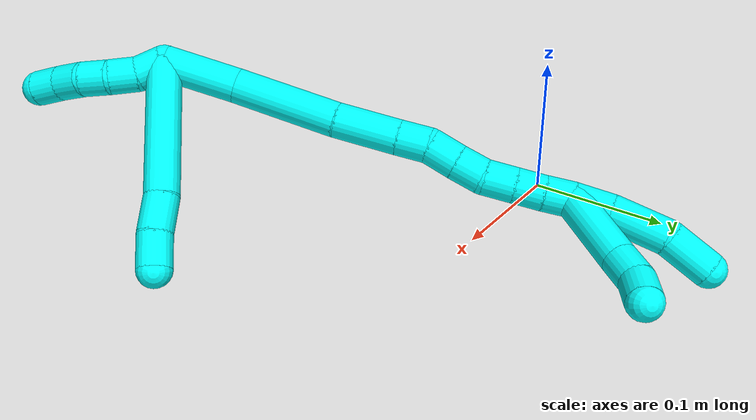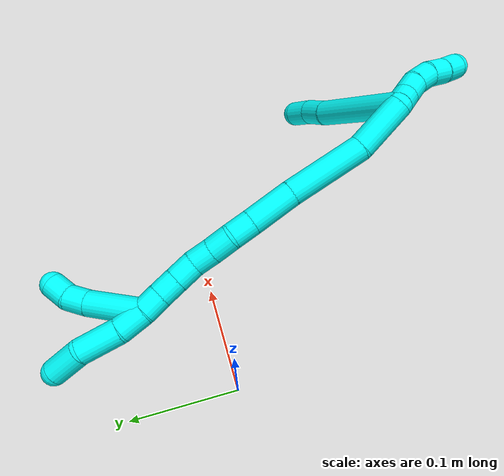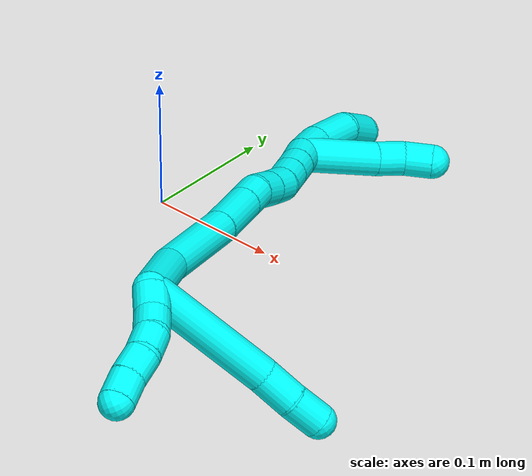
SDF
<sdf version="1.7">
 <world name="default">
  <model name="3">
   <static>0</static>
   <link name="3">
    <collision name="collision-cylinder-e_1_2_8">
     <pose>0.035689 0.027858 0.01966 -0.956244 0.808221 -0.436186</pose>
     <geometry><cylinder><radius>0.0125</radius><length>0.098718</length></cylinder></geometry>
     <surface>
      <friction><ode><mu>1.16</mu><mu2>1.16</mu2><slip1>0</slip1><slip2>0</slip2></ode></friction>
      <contact><ode><kp>1e+06</kp><kd>1</kd><max_vel>0</max_vel><min_depth>0.001</min_depth></ode></contact>
     </surface>
    </collision>
    <visual name="visual-cylinder-e_1_2_8">
     <pose>0.035689 0.027858 0.01966 -0.956244 0.808221 -0.436186</pose>
     <geometry><cylinder><radius>0.0125</radius><length>0.098718</length></cylinder></geometry>
     <material><ambient>0.003922 1 0.996078 1</ambient></material>
    </visual>
    <collision name="collision-cylinder-e_2_8_9">
     <pose>0.082162 0.061589 0.044647 -0.834161 0.936753 -0.441035</pose>
     <geometry><cylinder><radius>0.0125</radius><length>0.02677</length></cylinder></geometry>
     <surface>
      <friction><ode><mu>1.16</mu><mu2>1.16</mu2><slip1>0</slip1><slip2>0</slip2></ode></friction>
      <contact><ode><kp>1e+06</kp><kd>1</kd><max_vel>0</max_vel><min_depth>0.001</min_depth></ode></contact>
     </surface>
    </collision>
    <visual name="visual-cylinder-e_2_8_9">
     <pose>0.082162 0.061589 0.044647 -0.834161 0.936753 -0.441035</pose>
     <geometry><cylinder><radius>0.0125</radius><length>0.02677</length></cylinder></geometry>
     <material><ambient>0.003922 1 0.996078 1</ambient></material>
    </visual>
    <collision name="collision-cylinder-e_3_9_6">
     <pose>0.101767 0.074456 0.054821 -0.964687 0.803456 -0.43775</pose>
     <geometry><cylinder><radius>0.0125</radius><length>0.024512</length></cylinder></geometry>
     <surface>
      <friction><ode><mu>1.16</mu><mu2>1.16</mu2><slip1>0</slip1><slip2>0</slip2></ode></friction>
      <contact><ode><kp>1e+06</kp><kd>1</kd><max_vel>0</max_vel><min_depth>0.001</min_depth></ode></contact>
     </surface>
    </collision>
    <visual name="visual-cylinder-e_3_9_6">
     <pose>0.101767 0.074456 0.054821 -0.964687 0.803456 -0.43775</pose>
     <geometry><cylinder><radius>0.0125</radius><length>0.024512</length></cylinder></geometry>
     <material><ambient>0.003922 1 0.996078 1</ambient></material>
    </visual>
    <collision name="collision-cylinder-e_1_2_10">
     <pose>0.008811 -0.004527 -0.001364 1.86346 1.07829 1.35569</pose>
     <geometry><cylinder><radius>0.0125</radius><length>0.02</length></cylinder></geometry>
     <surface>
      <friction><ode><mu>1.16</mu><mu2>1.16</mu2><slip1>0</slip1><slip2>0</slip2></ode></friction>
      <contact><ode><kp>1e+06</kp><kd>1</kd><max_vel>0</max_vel><min_depth>0.001</min_depth></ode></contact>
     </surface>
    </collision>
    <visual name="visual-cylinder-e_1_2_10">
     <pose>0.008811 -0.004527 -0.001364 1.86346 1.07829 1.35569</pose>
     <geometry><cylinder><radius>0.0125</radius><length>0.02</length></cylinder></geometry>
     <material><ambient>0.003922 1 0.996078 1</ambient></material>
    </visual>
    <collision name="collision-cylinder-e_2_10_11">
     <pose>0.024703 -0.016065 -0.003579 1.69159 0.786655 0.876041</pose>
     <geometry><cylinder><radius>0.0125</radius><length>0.02</length></cylinder></geometry>
     <surface>
      <friction><ode><mu>1.16</mu><mu2>1.16</mu2><slip1>0</slip1><slip2>0</slip2></ode></friction>
      <contact><ode><kp>1e+06</kp><kd>1</kd><max_vel>0</max_vel><min_depth>0.001</min_depth></ode></contact>
     </surface>
    </collision>
    <visual name="visual-cylinder-e_2_10_11">
     <pose>0.024703 -0.016065 -0.003579 1.69159 0.786655 0.876041</pose>
     <geometry><cylinder><radius>0.0125</radius><length>0.02</length></cylinder></geometry>
     <material><ambient>0.003922 1 0.996078 1</ambient></material>
    </visual>
    <collision name="collision-cylinder-e_3_11_12">
     <pose>0.038182 -0.029925 -0.007914 2.04132 0.694391 1.0661</pose>
     <geometry><cylinder><radius>0.0125</radius><length>0.02</length></cylinder></geometry>
     <surface>
      <friction><ode><mu>1.16</mu><mu2>1.16</mu2><slip1>0</slip1><slip2>0</slip2></ode></friction>
      <contact><ode><kp>1e+06</kp><kd>1</kd><max_vel>0</max_vel><min_depth>0.001</min_depth></ode></contact>
     </surface>
    </collision>
    <visual name="visual-cylinder-e_3_11_12">
     <pose>0.038182 -0.029925 -0.007914 2.04132 0.694391 1.0661</pose>
     <geometry><cylinder><radius>0.0125</radius><length>0.02</length></cylinder></geometry>
     <material><ambient>0.003922 1 0.996078 1</ambient></material>
    </visual>
    <collision name="collision-cylinder-e_4_12_13">
     <pose>0.050583 -0.04226 -0.017219 2.38592 0.643782 1.39758</pose>
     <geometry><cylinder><radius>0.0125</radius><length>0.02</length></cylinder></geometry>
     <surface>
      <friction><ode><mu>1.16</mu><mu2>1.16</mu2><slip1>0</slip1><slip2>0</slip2></ode></friction>
      <contact><ode><kp>1e+06</kp><kd>1</kd><max_vel>0</max_vel><min_depth>0.001</min_depth></ode></contact>
     </surface>
    </collision>
    <visual name="visual-cylinder-e_4_12_13">
     <pose>0.050583 -0.04226 -0.017219 2.38592 0.643782 1.39758</pose>
     <geometry><cylinder><radius>0.0125</radius><length>0.02</length></cylinder></geometry>
     <material><ambient>0.003922 1 0.996078 1</ambient></material>
    </visual>
    <collision name="collision-cylinder-e_5_13_5">
     <pose>0.063429 -0.053259 -0.027812 2.28413 0.753662 1.42718</pose>
     <geometry><cylinder><radius>0.0125</radius><length>0.02</length></cylinder></geometry>
     <surface>
      <friction><ode><mu>1.16</mu><mu2>1.16</mu2><slip1>0</slip1><slip2>0</slip2></ode></friction>
      <contact><ode><kp>1e+06</kp><kd>1</kd><max_vel>0</max_vel><min_depth>0.001</min_depth></ode></contact>
     </surface>
    </collision>
    <visual name="visual-cylinder-e_5_13_5">
     <pose>0.063429 -0.053259 -0.027812 2.28413 0.753662 1.42718</pose>
     <geometry><cylinder><radius>0.0125</radius><length>0.02</length></cylinder></geometry>
     <material><ambient>0.003922 1 0.996078 1</ambient></material>
    </visual>
    <collision name="collision-cylinder-e_1_2_14">
     <pose>-0.009508 0.024742 0.002923 -1.45321 -0.364566 0.324787</pose>
     <geometry><cylinder><radius>0.0125</radius><length>0.053333</length></cylinder></geometry>
     <surface>
      <friction><ode><mu>1.16</mu><mu2>1.16</mu2><slip1>0</slip1><slip2>0</slip2></ode></friction>
      <contact><ode><kp>1e+06</kp><kd>1</kd><max_vel>0</max_vel><min_depth>0.001</min_depth></ode></contact>
     </surface>
    </collision>
    <visual name="visual-cylinder-e_1_2_14">
     <pose>-0.009508 0.024742 0.002923 -1.45321 -0.364566 0.324787</pose>
     <geometry><cylinder><radius>0.0125</radius><length>0.053333</length></cylinder></geometry>
     <material><ambient>0.003922 1 0.996078 1</ambient></material>
    </visual>
    <collision name="collision-cylinder-e_2_14_15">
     <pose>-0.030847 0.083134 0.019308 -1.19022 -0.315545 0.214581</pose>
     <geometry><cylinder><radius>0.0125</radius><length>0.076251</length></cylinder></geometry>
     <surface>
      <friction><ode><mu>1.16</mu><mu2>1.16</mu2><slip1>0</slip1><slip2>0</slip2></ode></friction>
      <contact><ode><kp>1e+06</kp><kd>1</kd><max_vel>0</max_vel><min_depth>0.001</min_depth></ode></contact>
     </surface>
    </collision>
    <visual name="visual-cylinder-e_2_14_15">
     <pose>-0.030847 0.083134 0.019308 -1.19022 -0.315545 0.214581</pose>
     <geometry><cylinder><radius>0.0125</radius><length>0.076251</length></cylinder></geometry>
     <material><ambient>0.003922 1 0.996078 1</ambient></material>
    </visual>
    <collision name="collision-cylinder-e_3_15_16">
     <pose>-0.050968 0.136413 0.03967 -1.23282 -0.37913 0.270224</pose>
     <geometry><cylinder><radius>0.0125</radius><length>0.044793</length></cylinder></geometry>
     <surface>
      <friction><ode><mu>1.16</mu><mu2>1.16</mu2><slip1>0</slip1><slip2>0</slip2></ode></friction>
      <contact><ode><kp>1e+06</kp><kd>1</kd><max_vel>0</max_vel><min_depth>0.001</min_depth></ode></contact>
     </surface>
    </collision>
    <visual name="visual-cylinder-e_3_15_16">
     <pose>-0.050968 0.136413 0.03967 -1.23282 -0.37913 0.270224</pose>
     <geometry><cylinder><radius>0.0125</radius><length>0.044793</length></cylinder></geometry>
     <material><ambient>0.003922 1 0.996078 1</ambient></material>
    </visual>
    <collision name="collision-cylinder-e_4_16_17">
     <pose>-0.063459 0.165539 0.050164 -1.20886 -0.392343 0.272801</pose>
     <geometry><cylinder><radius>0.0125</radius><length>0.02198</length></cylinder></geometry>
     <surface>
      <friction><ode><mu>1.16</mu><mu2>1.16</mu2><slip1>0</slip1><slip2>0</slip2></ode></friction>
      <contact><ode><kp>1e+06</kp><kd>1</kd><max_vel>0</max_vel><min_depth>0.001</min_depth></ode></contact>
     </surface>
    </collision>
    <visual name="visual-cylinder-e_4_16_17">
     <pose>-0.063459 0.165539 0.050164 -1.20886 -0.392343 0.272801</pose>
     <geometry><cylinder><radius>0.0125</radius><length>0.02198</length></cylinder></geometry>
     <material><ambient>0.003922 1 0.996078 1</ambient></material>
    </visual>
    <collision name="collision-cylinder-e_5_17_18">
     <pose>-0.068909 0.185382 0.0566 -1.30295 -0.115776 0.088325</pose>
     <geometry><cylinder><radius>0.0125</radius><length>0.021604</length></cylinder></geometry>
     <surface>
      <friction><ode><mu>1.16</mu><mu2>1.16</mu2><slip1>0</slip1><slip2>0</slip2></ode></friction>
      <contact><ode><kp>1e+06</kp><kd>1</kd><max_vel>0</max_vel><min_depth>0.001</min_depth></ode></contact>
     </surface>
    </collision>
    <visual name="visual-cylinder-e_5_17_18">
     <pose>-0.068909 0.185382 0.0566 -1.30295 -0.115776 0.088325</pose>
     <geometry><cylinder><radius>0.0125</radius><length>0.021604</length></cylinder></geometry>
     <material><ambient>0.003922 1 0.996078 1</ambient></material>
    </visual>
    <collision name="collision-cylinder-e_6_18_19">
     <pose>-0.071686 0.205279 0.062599 -1.25121 -0.150873 0.109091</pose>
     <geometry><cylinder><radius>0.0125</radius><length>0.020348</length></cylinder></geometry>
     <surface>
      <friction><ode><mu>1.16</mu><mu2>1.16</mu2><slip1>0</slip1><slip2>0</slip2></ode></friction>
      <contact><ode><kp>1e+06</kp><kd>1</kd><max_vel>0</max_vel><min_depth>0.001</min_depth></ode></contact>
     </surface>
    </collision>
    <visual name="visual-cylinder-e_6_18_19">
     <pose>-0.071686 0.205279 0.062599 -1.25121 -0.150873 0.109091</pose>
     <geometry><cylinder><radius>0.0125</radius><length>0.020348</length></cylinder></geometry>
     <material><ambient>0.003922 1 0.996078 1</ambient></material>
    </visual>
    <collision name="collision-cylinder-e_7_19_20">
     <pose>-0.077393 0.224463 0.067845 -1.35765 -0.400813 0.324856</pose>
     <geometry><cylinder><radius>0.0125</radius><length>0.021415</length></cylinder></geometry>
     <surface>
      <friction><ode><mu>1.16</mu><mu2>1.16</mu2><slip1>0</slip1><slip2>0</slip2></ode></friction>
      <contact><ode><kp>1e+06</kp><kd>1</kd><max_vel>0</max_vel><min_depth>0.001</min_depth></ode></contact>
     </surface>
    </collision>
    <visual name="visual-cylinder-e_7_19_20">
     <pose>-0.077393 0.224463 0.067845 -1.35765 -0.400813 0.324856</pose>
     <geometry><cylinder><radius>0.0125</radius><length>0.021415</length></cylinder></geometry>
     <material><ambient>0.003922 1 0.996078 1</ambient></material>
    </visual>
    <collision name="collision-cylinder-e_8_20_21">
     <pose>-0.085479 0.243104 0.071859 -1.35981 -0.401376 0.326022</pose>
     <geometry><cylinder><radius>0.0125</radius><length>0.02001</length></cylinder></geometry>
     <surface>
      <friction><ode><mu>1.16</mu><mu2>1.16</mu2><slip1>0</slip1><slip2>0</slip2></ode></friction>
      <contact><ode><kp>1e+06</kp><kd>1</kd><max_vel>0</max_vel><min_depth>0.001</min_depth></ode></contact>
     </surface>
    </collision>
    <visual name="visual-cylinder-e_8_20_21">
     <pose>-0.085479 0.243104 0.071859 -1.35981 -0.401376 0.326022</pose>
     <geometry><cylinder><radius>0.0125</radius><length>0.02001</length></cylinder></geometry>
     <material><ambient>0.003922 1 0.996078 1</ambient></material>
    </visual>
    <collision name="collision-cylinder-e_9_21_1">
     <pose>-0.093725 0.261105 0.075513 -1.3813 -0.442202 0.367336</pose>
     <geometry><cylinder><radius>0.0125</radius><length>0.020267</length></cylinder></geometry>
     <surface>
      <friction><ode><mu>1.16</mu><mu2>1.16</mu2><slip1>0</slip1><slip2>0</slip2></ode></friction>
      <contact><ode><kp>1e+06</kp><kd>1</kd><max_vel>0</max_vel><min_depth>0.001</min_depth></ode></contact>
     </surface>
    </collision>
    <visual name="visual-cylinder-e_9_21_1">
     <pose>-0.093725 0.261105 0.075513 -1.3813 -0.442202 0.367336</pose>
     <geometry><cylinder><radius>0.0125</radius><length>0.020267</length></cylinder></geometry>
     <material><ambient>0.003922 1 0.996078 1</ambient></material>
    </visual>
    <collision name="collision-cylinder-e_1_1_22">
     <pose>-0.102572 0.281875 0.080809 -1.27636 -0.351415 0.261861</pose>
     <geometry><cylinder><radius>0.0125</radius><length>0.02621</length></cylinder></geometry>
     <surface>
      <friction><ode><mu>1.16</mu><mu2>1.16</mu2><slip1>0</slip1><slip2>0</slip2></ode></friction>
      <contact><ode><kp>1e+06</kp><kd>1</kd><max_vel>0</max_vel><min_depth>0.001</min_depth></ode></contact>
     </surface>
    </collision>
    <visual name="visual-cylinder-e_1_1_22">
     <pose>-0.102572 0.281875 0.080809 -1.27636 -0.351415 0.261861</pose>
     <geometry><cylinder><radius>0.0125</radius><length>0.02621</length></cylinder></geometry>
     <material><ambient>0.003922 1 0.996078 1</ambient></material>
    </visual>
    <collision name="collision-cylinder-e_2_22_23">
     <pose>-0.111379 0.311423 0.092974 -1.12042 -0.214253 0.1347</pose>
     <geometry><cylinder><radius>0.0125</radius><length>0.040409</length></cylinder></geometry>
     <surface>
      <friction><ode><mu>1.16</mu><mu2>1.16</mu2><slip1>0</slip1><slip2>0</slip2></ode></friction>
      <contact><ode><kp>1e+06</kp><kd>1</kd><max_vel>0</max_vel><min_depth>0.001</min_depth></ode></contact>
     </surface>
    </collision>
    <visual name="visual-cylinder-e_2_22_23">
     <pose>-0.111379 0.311423 0.092974 -1.12042 -0.214253 0.1347</pose>
     <geometry><cylinder><radius>0.0125</radius><length>0.040409</length></cylinder></geometry>
     <material><ambient>0.003922 1 0.996078 1</ambient></material>
    </visual>
    <collision name="collision-cylinder-e_3_23_4">
     <pose>-0.115474 0.345537 0.104963 -1.36596 0.012074 -0.009824</pose>
     <geometry><cylinder><radius>0.0125</radius><length>0.03338</length></cylinder></geometry>
     <surface>
      <friction><ode><mu>1.16</mu><mu2>1.16</mu2><slip1>0</slip1><slip2>0</slip2></ode></friction>
      <contact><ode><kp>1e+06</kp><kd>1</kd><max_vel>0</max_vel><min_depth>0.001</min_depth></ode></contact>
     </surface>
    </collision>
    <visual name="visual-cylinder-e_3_23_4">
     <pose>-0.115474 0.345537 0.104963 -1.36596 0.012074 -0.009824</pose>
     <geometry><cylinder><radius>0.0125</radius><length>0.03338</length></cylinder></geometry>
     <material><ambient>0.003922 1 0.996078 1</ambient></material>
    </visual>
    <collision name="collision-cylinder-e_1_1_24">
     <pose>-0.089994 0.287195 0.098612 -0.674656 0.286647 -0.101144</pose>
     <geometry><cylinder><radius>0.0125</radius><length>0.057067</length></cylinder></geometry>
     <surface>
      <friction><ode><mu>1.16</mu><mu2>1.16</mu2><slip1>0</slip1><slip2>0</slip2></ode></friction>
      <contact><ode><kp>1e+06</kp><kd>1</kd><max_vel>0</max_vel><min_depth>0.001</min_depth></ode></contact>
     </surface>
    </collision>
    <visual name="visual-cylinder-e_1_1_24">
     <pose>-0.089994 0.287195 0.098612 -0.674656 0.286647 -0.101144</pose>
     <geometry><cylinder><radius>0.0125</radius><length>0.057067</length></cylinder></geometry>
     <material><ambient>0.003922 1 0.996078 1</ambient></material>
    </visual>
    <collision name="collision-cylinder-e_2_24_25">
     <pose>-0.079134 0.309538 0.129062 -0.524173 0.260263 -0.070185</pose>
     <geometry><cylinder><radius>0.0125</radius><length>0.0217</length></cylinder></geometry>
     <surface>
      <friction><ode><mu>1.16</mu><mu2>1.16</mu2><slip1>0</slip1><slip2>0</slip2></ode></friction>
      <contact><ode><kp>1e+06</kp><kd>1</kd><max_vel>0</max_vel><min_depth>0.001</min_depth></ode></contact>
     </surface>
    </collision>
    <visual name="visual-cylinder-e_2_24_25">
     <pose>-0.079134 0.309538 0.129062 -0.524173 0.260263 -0.070185</pose>
     <geometry><cylinder><radius>0.0125</radius><length>0.0217</length></cylinder></geometry>
     <material><ambient>0.003922 1 0.996078 1</ambient></material>
    </visual>
    <collision name="collision-cylinder-e_3_25_3">
     <pose>-0.071605 0.316884 0.147405 -0.222674 0.462515 -0.052639</pose>
     <geometry><cylinder><radius>0.0125</radius><length>0.021233</length></cylinder></geometry>
     <surface>
      <friction><ode><mu>1.16</mu><mu2>1.16</mu2><slip1>0</slip1><slip2>0</slip2></ode></friction>
      <contact><ode><kp>1e+06</kp><kd>1</kd><max_vel>0</max_vel><min_depth>0.001</min_depth></ode></contact>
     </surface>
    </collision>
    <visual name="visual-cylinder-e_3_25_3">
     <pose>-0.071605 0.316884 0.147405 -0.222674 0.462515 -0.052639</pose>
     <geometry><cylinder><radius>0.0125</radius><length>0.021233</length></cylinder></geometry>
     <material><ambient>0.003922 1 0.996078 1</ambient></material>
    </visual>
    <collision name="collision-sphere-3">
     <pose>-0.066868 0.318982 0.156672 0 -0 0</pose>
     <geometry><sphere><radius>0.0125</radius></sphere></geometry>
     <surface>
      <friction><ode><mu>1.16</mu><mu2>1.16</mu2><slip1>0</slip1><slip2>0</slip2></ode></friction>
      <contact><ode><kp>1e+06</kp><kd>1</kd><max_vel>0</max_vel><min_depth>0.001</min_depth></ode></contact>
     </surface>
    </collision>
    <visual name="visual-sphere-3">
     <pose>-0.066868 0.318982 0.156672 0 -0 0</pose>
     <geometry><sphere><radius>0.0125</radius></sphere></geometry>
     <material><ambient>0.003922 1 0.996078 1</ambient></material>
    </visual>
    <collision name="collision-sphere-25">
     <pose>-0.076342 0.314786 0.138139 0 -0 0</pose>
     <geometry><sphere><radius>0.0125</radius></sphere></geometry>
     <surface>
      <friction><ode><mu>1.16</mu><mu2>1.16</mu2><slip1>0</slip1><slip2>0</slip2></ode></friction>
      <contact><ode><kp>1e+06</kp><kd>1</kd><max_vel>0</max_vel><min_depth>0.001</min_depth></ode></contact>
     </surface>
    </collision>
    <visual name="visual-sphere-25">
     <pose>-0.076342 0.314786 0.138139 0 -0 0</pose>
     <geometry><sphere><radius>0.0125</radius></sphere></geometry>
     <material><ambient>0.003922 1 0.996078 1</ambient></material>
    </visual>
    <collision name="collision-sphere-24">
     <pose>-0.081926 0.304291 0.119985 0 -0 0</pose>
     <geometry><sphere><radius>0.0125</radius></sphere></geometry>
     <surface>
      <friction><ode><mu>1.16</mu><mu2>1.16</mu2><slip1>0</slip1><slip2>0</slip2></ode></friction>
      <contact><ode><kp>1e+06</kp><kd>1</kd><max_vel>0</max_vel><min_depth>0.001</min_depth></ode></contact>
     </surface>
    </collision>
    <visual name="visual-sphere-24">
     <pose>-0.081926 0.304291 0.119985 0 -0 0</pose>
     <geometry><sphere><radius>0.0125</radius></sphere></geometry>
     <material><ambient>0.003922 1 0.996078 1</ambient></material>
    </visual>
    <collision name="collision-sphere-4">
     <pose>-0.115272 0.361877 0.108357 0 -0 0</pose>
     <geometry><sphere><radius>0.0125</radius></sphere></geometry>
     <surface>
      <friction><ode><mu>1.16</mu><mu2>1.16</mu2><slip1>0</slip1><slip2>0</slip2></ode></friction>
      <contact><ode><kp>1e+06</kp><kd>1</kd><max_vel>0</max_vel><min_depth>0.001</min_depth></ode></contact>
     </surface>
    </collision>
    <visual name="visual-sphere-4">
     <pose>-0.115272 0.361877 0.108357 0 -0 0</pose>
     <geometry><sphere><radius>0.0125</radius></sphere></geometry>
     <material><ambient>0.003922 1 0.996078 1</ambient></material>
    </visual>
    <collision name="collision-sphere-23">
     <pose>-0.115675 0.329197 0.101568 0 -0 0</pose>
     <geometry><sphere><radius>0.0125</radius></sphere></geometry>
     <surface>
      <friction><ode><mu>1.16</mu><mu2>1.16</mu2><slip1>0</slip1><slip2>0</slip2></ode></friction>
      <contact><ode><kp>1e+06</kp><kd>1</kd><max_vel>0</max_vel><min_depth>0.001</min_depth></ode></contact>
     </surface>
    </collision>
    <visual name="visual-sphere-23">
     <pose>-0.115675 0.329197 0.101568 0 -0 0</pose>
     <geometry><sphere><radius>0.0125</radius></sphere></geometry>
     <material><ambient>0.003922 1 0.996078 1</ambient></material>
    </visual>
    <collision name="collision-sphere-22">
     <pose>-0.107083 0.293649 0.08438 0 -0 0</pose>
     <geometry><sphere><radius>0.0125</radius></sphere></geometry>
     <surface>
      <friction><ode><mu>1.16</mu><mu2>1.16</mu2><slip1>0</slip1><slip2>0</slip2></ode></friction>
      <contact><ode><kp>1e+06</kp><kd>1</kd><max_vel>0</max_vel><min_depth>0.001</min_depth></ode></contact>
     </surface>
    </collision>
    <visual name="visual-sphere-22">
     <pose>-0.107083 0.293649 0.08438 0 -0 0</pose>
     <geometry><sphere><radius>0.0125</radius></sphere></geometry>
     <material><ambient>0.003922 1 0.996078 1</ambient></material>
    </visual>
    <collision name="collision-sphere-1">
     <pose>-0.098061 0.2701 0.077238 0 -0 0</pose>
     <geometry><sphere><radius>0.0125</radius></sphere></geometry>
     <surface>
      <friction><ode><mu>1.16</mu><mu2>1.16</mu2><slip1>0</slip1><slip2>0</slip2></ode></friction>
      <contact><ode><kp>1e+06</kp><kd>1</kd><max_vel>0</max_vel><min_depth>0.001</min_depth></ode></contact>
     </surface>
    </collision>
    <visual name="visual-sphere-1">
     <pose>-0.098061 0.2701 0.077238 0 -0 0</pose>
     <geometry><sphere><radius>0.0125</radius></sphere></geometry>
     <material><ambient>0.003922 1 0.996078 1</ambient></material>
    </visual>
    <collision name="collision-sphere-21">
     <pose>-0.089388 0.25211 0.073788 0 -0 0</pose>
     <geometry><sphere><radius>0.0125</radius></sphere></geometry>
     <surface>
      <friction><ode><mu>1.16</mu><mu2>1.16</mu2><slip1>0</slip1><slip2>0</slip2></ode></friction>
      <contact><ode><kp>1e+06</kp><kd>1</kd><max_vel>0</max_vel><min_depth>0.001</min_depth></ode></contact>
     </surface>
    </collision>
    <visual name="visual-sphere-21">
     <pose>-0.089388 0.25211 0.073788 0 -0 0</pose>
     <geometry><sphere><radius>0.0125</radius></sphere></geometry>
     <material><ambient>0.003922 1 0.996078 1</ambient></material>
    </visual>
    <collision name="collision-sphere-11">
     <pose>0.031783 -0.023076 -0.00443 0 -0 0</pose>
     <geometry><sphere><radius>0.0125</radius></sphere></geometry>
     <surface>
      <friction><ode><mu>1.16</mu><mu2>1.16</mu2><slip1>0</slip1><slip2>0</slip2></ode></friction>
      <contact><ode><kp>1e+06</kp><kd>1</kd><max_vel>0</max_vel><min_depth>0.001</min_depth></ode></contact>
     </surface>
    </collision>
    <visual name="visual-sphere-11">
     <pose>0.031783 -0.023076 -0.00443 0 -0 0</pose>
     <geometry><sphere><radius>0.0125</radius></sphere></geometry>
     <material><ambient>0.003922 1 0.996078 1</ambient></material>
    </visual>
    <collision name="collision-sphere-10">
     <pose>0.017623 -0.009055 -0.002728 0 -0 0</pose>
     <geometry><sphere><radius>0.0125</radius></sphere></geometry>
     <surface>
      <friction><ode><mu>1.16</mu><mu2>1.16</mu2><slip1>0</slip1><slip2>0</slip2></ode></friction>
      <contact><ode><kp>1e+06</kp><kd>1</kd><max_vel>0</max_vel><min_depth>0.001</min_depth></ode></contact>
     </surface>
    </collision>
    <visual name="visual-sphere-10">
     <pose>0.017623 -0.009055 -0.002728 0 -0 0</pose>
     <geometry><sphere><radius>0.0125</radius></sphere></geometry>
     <material><ambient>0.003922 1 0.996078 1</ambient></material>
    </visual>
    <collision name="collision-sphere-6">
     <pose>0.110589 0.081449 0.059668 0 -0 0</pose>
     <geometry><sphere><radius>0.0125</radius></sphere></geometry>
     <surface>
      <friction><ode><mu>1.16</mu><mu2>1.16</mu2><slip1>0</slip1><slip2>0</slip2></ode></friction>
      <contact><ode><kp>1e+06</kp><kd>1</kd><max_vel>0</max_vel><min_depth>0.001</min_depth></ode></contact>
     </surface>
    </collision>
    <visual name="visual-sphere-6">
     <pose>0.110589 0.081449 0.059668 0 -0 0</pose>
     <geometry><sphere><radius>0.0125</radius></sphere></geometry>
     <material><ambient>0.003922 1 0.996078 1</ambient></material>
    </visual>
    <collision name="collision-sphere-9">
     <pose>0.092946 0.067463 0.049974 0 -0 0</pose>
     <geometry><sphere><radius>0.0125</radius></sphere></geometry>
     <surface>
      <friction><ode><mu>1.16</mu><mu2>1.16</mu2><slip1>0</slip1><slip2>0</slip2></ode></friction>
      <contact><ode><kp>1e+06</kp><kd>1</kd><max_vel>0</max_vel><min_depth>0.001</min_depth></ode></contact>
     </surface>
    </collision>
    <visual name="visual-sphere-9">
     <pose>0.092946 0.067463 0.049974 0 -0 0</pose>
     <geometry><sphere><radius>0.0125</radius></sphere></geometry>
     <material><ambient>0.003922 1 0.996078 1</ambient></material>
    </visual>
    <collision name="collision-sphere-2">
     <geometry><sphere><radius>0.0125</radius></sphere></geometry>
     <surface>
      <friction><ode><mu>1.16</mu><mu2>1.16</mu2><slip1>0</slip1><slip2>0</slip2></ode></friction>
      <contact><ode><kp>1e+06</kp><kd>1</kd><max_vel>0</max_vel><min_depth>0.001</min_depth></ode></contact>
     </surface>
    </collision>
    <visual name="visual-sphere-2">
     <geometry><sphere><radius>0.0125</radius></sphere></geometry>
     <material><ambient>0.003922 1 0.996078 1</ambient></material>
    </visual>
    <collision name="collision-sphere-19">
     <pose>-0.073215 0.214828 0.065759 0 -0 0</pose>
     <geometry><sphere><radius>0.0125</radius></sphere></geometry>
     <surface>
      <friction><ode><mu>1.16</mu><mu2>1.16</mu2><slip1>0</slip1><slip2>0</slip2></ode></friction>
      <contact><ode><kp>1e+06</kp><kd>1</kd><max_vel>0</max_vel><min_depth>0.001</min_depth></ode></contact>
     </surface>
    </collision>
    <visual name="visual-sphere-19">
     <pose>-0.073215 0.214828 0.065759 0 -0 0</pose>
     <geometry><sphere><radius>0.0125</radius></sphere></geometry>
     <material><ambient>0.003922 1 0.996078 1</ambient></material>
    </visual>
    <collision name="collision-sphere-8">
     <pose>0.071379 0.055716 0.039319 0 -0 0</pose>
     <geometry><sphere><radius>0.0125</radius></sphere></geometry>
     <surface>
      <friction><ode><mu>1.16</mu><mu2>1.16</mu2><slip1>0</slip1><slip2>0</slip2></ode></friction>
      <contact><ode><kp>1e+06</kp><kd>1</kd><max_vel>0</max_vel><min_depth>0.001</min_depth></ode></contact>
     </surface>
    </collision>
    <visual name="visual-sphere-8">
     <pose>0.071379 0.055716 0.039319 0 -0 0</pose>
     <geometry><sphere><radius>0.0125</radius></sphere></geometry>
     <material><ambient>0.003922 1 0.996078 1</ambient></material>
    </visual>
    <collision name="collision-sphere-12">
     <pose>0.044581 -0.036775 -0.011398 0 -0 0</pose>
     <geometry><sphere><radius>0.0125</radius></sphere></geometry>
     <surface>
      <friction><ode><mu>1.16</mu><mu2>1.16</mu2><slip1>0</slip1><slip2>0</slip2></ode></friction>
      <contact><ode><kp>1e+06</kp><kd>1</kd><max_vel>0</max_vel><min_depth>0.001</min_depth></ode></contact>
     </surface>
    </collision>
    <visual name="visual-sphere-12">
     <pose>0.044581 -0.036775 -0.011398 0 -0 0</pose>
     <geometry><sphere><radius>0.0125</radius></sphere></geometry>
     <material><ambient>0.003922 1 0.996078 1</ambient></material>
    </visual>
    <collision name="collision-sphere-13">
     <pose>0.056586 -0.047745 -0.02304 0 -0 0</pose>
     <geometry><sphere><radius>0.0125</radius></sphere></geometry>
     <surface>
      <friction><ode><mu>1.16</mu><mu2>1.16</mu2><slip1>0</slip1><slip2>0</slip2></ode></friction>
      <contact><ode><kp>1e+06</kp><kd>1</kd><max_vel>0</max_vel><min_depth>0.001</min_depth></ode></contact>
     </surface>
    </collision>
    <visual name="visual-sphere-13">
     <pose>0.056586 -0.047745 -0.02304 0 -0 0</pose>
     <geometry><sphere><radius>0.0125</radius></sphere></geometry>
     <material><ambient>0.003922 1 0.996078 1</ambient></material>
    </visual>
    <collision name="collision-sphere-5">
     <pose>0.070272 -0.058773 -0.032583 0 -0 0</pose>
     <geometry><sphere><radius>0.0125</radius></sphere></geometry>
     <surface>
      <friction><ode><mu>1.16</mu><mu2>1.16</mu2><slip1>0</slip1><slip2>0</slip2></ode></friction>
      <contact><ode><kp>1e+06</kp><kd>1</kd><max_vel>0</max_vel><min_depth>0.001</min_depth></ode></contact>
     </surface>
    </collision>
    <visual name="visual-sphere-5">
     <pose>0.070272 -0.058773 -0.032583 0 -0 0</pose>
     <geometry><sphere><radius>0.0125</radius></sphere></geometry>
     <material><ambient>0.003922 1 0.996078 1</ambient></material>
    </visual>
    <collision name="collision-sphere-14">
     <pose>-0.019015 0.049484 0.005845 0 -0 0</pose>
     <geometry><sphere><radius>0.0125</radius></sphere></geometry>
     <surface>
      <friction><ode><mu>1.16</mu><mu2>1.16</mu2><slip1>0</slip1><slip2>0</slip2></ode></friction>
      <contact><ode><kp>1e+06</kp><kd>1</kd><max_vel>0</max_vel><min_depth>0.001</min_depth></ode></contact>
     </surface>
    </collision>
    <visual name="visual-sphere-14">
     <pose>-0.019015 0.049484 0.005845 0 -0 0</pose>
     <geometry><sphere><radius>0.0125</radius></sphere></geometry>
     <material><ambient>0.003922 1 0.996078 1</ambient></material>
    </visual>
    <collision name="collision-sphere-15">
     <pose>-0.042679 0.116784 0.032771 0 -0 0</pose>
     <geometry><sphere><radius>0.0125</radius></sphere></geometry>
     <surface>
      <friction><ode><mu>1.16</mu><mu2>1.16</mu2><slip1>0</slip1><slip2>0</slip2></ode></friction>
      <contact><ode><kp>1e+06</kp><kd>1</kd><max_vel>0</max_vel><min_depth>0.001</min_depth></ode></contact>
     </surface>
    </collision>
    <visual name="visual-sphere-15">
     <pose>-0.042679 0.116784 0.032771 0 -0 0</pose>
     <geometry><sphere><radius>0.0125</radius></sphere></geometry>
     <material><ambient>0.003922 1 0.996078 1</ambient></material>
    </visual>
    <collision name="collision-sphere-16">
     <pose>-0.059257 0.156042 0.046569 0 -0 0</pose>
     <geometry><sphere><radius>0.0125</radius></sphere></geometry>
     <surface>
      <friction><ode><mu>1.16</mu><mu2>1.16</mu2><slip1>0</slip1><slip2>0</slip2></ode></friction>
      <contact><ode><kp>1e+06</kp><kd>1</kd><max_vel>0</max_vel><min_depth>0.001</min_depth></ode></contact>
     </surface>
    </collision>
    <visual name="visual-sphere-16">
     <pose>-0.059257 0.156042 0.046569 0 -0 0</pose>
     <geometry><sphere><radius>0.0125</radius></sphere></geometry>
     <material><ambient>0.003922 1 0.996078 1</ambient></material>
    </visual>
    <collision name="collision-sphere-17">
     <pose>-0.067661 0.175035 0.05376 0 -0 0</pose>
     <geometry><sphere><radius>0.0125</radius></sphere></geometry>
     <surface>
      <friction><ode><mu>1.16</mu><mu2>1.16</mu2><slip1>0</slip1><slip2>0</slip2></ode></friction>
      <contact><ode><kp>1e+06</kp><kd>1</kd><max_vel>0</max_vel><min_depth>0.001</min_depth></ode></contact>
     </surface>
    </collision>
    <visual name="visual-sphere-17">
     <pose>-0.067661 0.175035 0.05376 0 -0 0</pose>
     <geometry><sphere><radius>0.0125</radius></sphere></geometry>
     <material><ambient>0.003922 1 0.996078 1</ambient></material>
    </visual>
    <collision name="collision-sphere-18">
     <pose>-0.070157 0.19573 0.059439 0 -0 0</pose>
     <geometry><sphere><radius>0.0125</radius></sphere></geometry>
     <surface>
      <friction><ode><mu>1.16</mu><mu2>1.16</mu2><slip1>0</slip1><slip2>0</slip2></ode></friction>
      <contact><ode><kp>1e+06</kp><kd>1</kd><max_vel>0</max_vel><min_depth>0.001</min_depth></ode></contact>
     </surface>
    </collision>
    <visual name="visual-sphere-18">
     <pose>-0.070157 0.19573 0.059439 0 -0 0</pose>
     <geometry><sphere><radius>0.0125</radius></sphere></geometry>
     <material><ambient>0.003922 1 0.996078 1</ambient></material>
    </visual>
    <collision name="collision-sphere-20">
     <pose>-0.081571 0.234099 0.06993 0 -0 0</pose>
     <geometry><sphere><radius>0.0125</radius></sphere></geometry>
     <surface>
      <friction><ode><mu>1.16</mu><mu2>1.16</mu2><slip1>0</slip1><slip2>0</slip2></ode></friction>
      <contact><ode><kp>1e+06</kp><kd>1</kd><max_vel>0</max_vel><min_depth>0.001</min_depth></ode></contact>
     </surface>
    </collision>
    <visual name="visual-sphere-20">
     <pose>-0.081571 0.234099 0.06993 0 -0 0</pose>
     <geometry><sphere><radius>0.0125</radius></sphere></geometry>
     <material><ambient>0.003922 1 0.996078 1</ambient></material>
    </visual>
    <inertial>
     <pose>-0.02965 0.140263 0.047579 0 -0 0</pose>
     <mass>0.75</mass>
     <inertia>
      <ixx>0.000161</ixx>
      <ixy>0</ixy>
      <ixz>0</ixz>
      <iyy>0.000151</iyy>
      <iyz>0</iyz>
      <izz>-0.000168</izz>
     </inertia>
    </inertial>
   </link>
   <pose>0.183493 -0.206282 0.113964 -0.991981 0.741629 -0.380007</pose>
  </model>
 </world>
</sdf>
